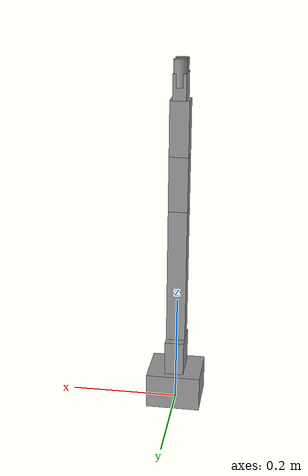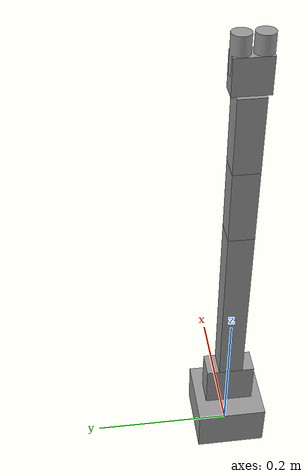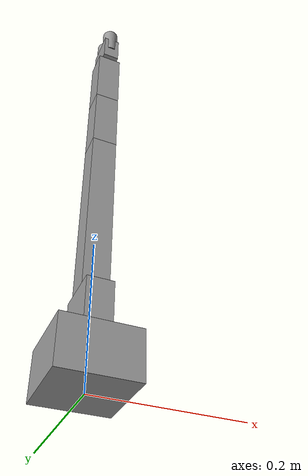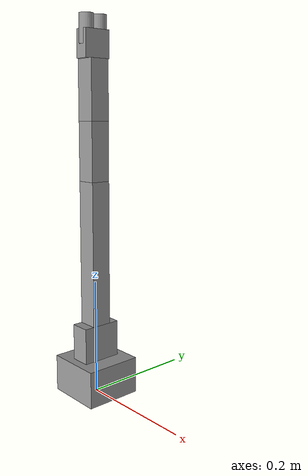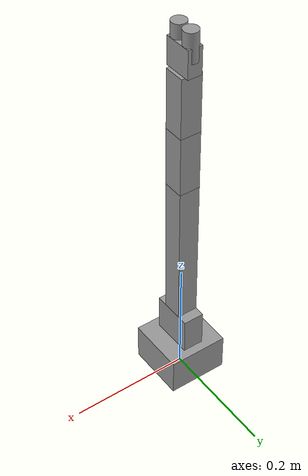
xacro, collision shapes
<?xml version="1.0" ?>
<robot name="dynamixel_arm" xmlns:xacro="http://ros.org/wiki/xacro">

	<!-- constants for robot dimentions -->
	<xacro:property name="pi" value="3.141592"/>

	<!-- inertial for box -->
	<xacro:macro
		name="default_box_inertial"
		params="mass depth width height x_offset y_offset z_offset">
		<inertial>
			<origin xyz="${x_offset} ${y_offset} ${z_offset}" rpy="0 0 0"/>
			<mass value="${mass}"/>
			<inertia
				ixx="1.0" ixy="0.0" ixz="0.0"
				iyy="1.0" iyz="0.0"
				izz="1.0"/>
		</inertial>
	</xacro:macro>

	<!-- inertial for cylinder -->
	<xacro:macro
		name="default_cylinder_inertial"
		params="mass length radius x_offset y_offset z_offset">
		<inertial>
			<origin xyz="${x_offset} ${y_offset} ${z_offset}" rpy="0 0 0"/>
			<mass value="${mass}"/>
			<inertia
				ixx="1.0" ixy="0.0" ixz="0.0"
				iyy="1.0" iyz="0.0"
				izz="1.0"/>
		</inertial>
	</xacro:macro>

	<!-- import Rviz color -->
	<xacro:include filename="$(find infant_description)/materials/materials.xacro"/>
	<!-- import Gazebo -->
	<xacro:include filename="$(find infant_description)/urdf/dynamixel_arm2.gazebo.xacro"/>
	<link name="world"/>

	<joint name="fixed" type="fixed">
		<parent link="world"/>
		<child link="arm_base_link"/>
	</joint>

	<!-- Dynamixel Arm -->

	<link name="arm_base_link">
		<visual>
			<geometry>
				<mesh filename="package://infant_description/meshes/ARM_BODY.dae" />
			</geometry>
			<origin xyz="0 0 0" rpy="0 0 0"/>
			<material name="gray"/>
		</visual>
		<collision>
			<geometry>
				<box size="0.100 0.100 0.064"/>
			</geometry>
			<origin xyz="0 0 ${0.064/2}" rpy="0 0 0"/>
		</collision>
		<inertial>
			<origin xyz="0.0075 0.0000 0.0327" rpy="0 0 0"/>
			<mass value="0.346"/>
			<inertia
				ixx="0.000324" ixy="0.0" ixz="0.0"
				iyy="0.000383" iyz="0.0"
				izz="0.000381"/>
		</inertial>
	</link>

	<joint name="joint1" type="revolute">
		<parent link="arm_base_link"/>
		<child link="link1"/>
		<origin xyz="0 0 ${0.064}" rpy="0 0 0"/>
		<axis xyz="0 0 1"/>
		<limit effort="6.0" lower="-${175/180*pi}" upper="${175/180*pi}" velocity="${11/6*pi}"/>
	</joint>

	<link name="link1">
		<visual>
			<geometry>
				<mesh filename="package://infant_description/meshes/ARM_JOINT1.dae"/>
			</geometry>
			<origin xyz="0 0 0" rpy="${pi/2} 0 0"/>
			<material name="gray"/>
		</visual>
		<collision>
			<geometry>
				<box size="0.035 0.070 0.063"/>
			</geometry>
			<origin xyz="0 0 ${0.063/2}" rpy="0 0 0"/>
		</collision>
		<inertial>
			<origin xyz="0.0002 0.0367 0.0000" rpy="${pi/2} 0 0"/>
			<mass value="0.506"/>
			<inertia
				ixx="0.000733" ixy="0.0" ixz="0.0"
				iyy="0.000495" iyz="0.0"
				izz="0.000424"/>
		</inertial>
	</link>

	<joint name="joint2" type="revolute">
		<parent link="link1"/>
		<child link="link2"/>
		<origin xyz="0 0 ${0.063}" rpy="0 0 0"/>
		<axis xyz="0 -1 0"/>
		<limit effort="${2*6.0}" lower="-${95/180*pi}" upper="${95/180*pi}" velocity="${11/6*pi}"/>
	</joint>

	<link name="link2">
		<visual>
			<geometry>
				<mesh filename="package://infant_description/meshes/ARM_JOINT2.dae"/>
			</geometry>
			<origin xyz="0 0 0" rpy="0 0 0"/>
			<material name="gray"/>
		</visual>
		<collision>
			<geometry>
				<box size="0.035 0.035 0.250"/>
			</geometry>
			<origin xyz="0 0 ${0.250/2}" rpy="0 0 0"/>
		</collision>
		<inertial>
			<origin xyz="-0.0083 0.0001 0.1509" rpy="0 0 0"/>
			<mass value="0.452"/>
			<inertia
				ixx="0.003839" ixy="0.0" ixz="0.000159"
				iyy="0.000378" iyz="0.0"
				izz="0.000282"/>
		</inertial>
	</link>

	<joint name="joint3" type="revolute">
		<parent link="link2"/>
		<child link="link3"/>
		<origin xyz="0 0 0.250" rpy="0 0 0"/>
		<axis xyz="0 -1 0"/>
		<limit effort="6.0" lower="-${150/180*pi}" upper="${10/180*pi}" velocity="${11/6*pi}"/>
	</joint>

	<link name="link3">
		<visual>
			<geometry>
				<mesh filename="package://infant_description/meshes/ARM_JOINT3.dae"/>
			</geometry>
			<origin xyz="0 0 0" rpy="0 0 0"/>
			<material name="gray"/>
		</visual>
		<collision>
			<geometry>
				<box size="0.035 0.035 0.100"/>
			</geometry>
			<origin xyz="0 0 ${0.100/2}" rpy="0 0 0"/>
		</collision>
		<inertial>
			<origin xyz="-0.0193 0.0003 0.0574" rpy="0 0 0"/>
			<mass value="0.232"/>
			<inertia
				ixx="0.000230" ixy="0.0" ixz="-0.000164"
				iyy="0.000231" iyz="0.0"
				izz="0.000120"/>
		</inertial>
	</link>

	<joint name="joint4" type="revolute">
		<parent link="link3"/>
		<child link="link4"/>
		<origin xyz="0 0 0.100" rpy="0 0 0"/>
		<axis xyz="0 0 1"/>
		<limit effort="6.0" lower="-${175/180*pi}" upper="${175/180*pi}" velocity="${11/6*pi}"/>
	</joint>

	<link name="link4">
		<visual>
			<geometry>
				<mesh filename="package://infant_description/meshes/ARM_JOINT4.dae"/>
			</geometry>
			<origin xyz="0 0 0" rpy="${pi/2} 0 0"/>
			<material name="gray"/>
		</visual>
		<collision>
			<geometry>
				<box size="0.035 0.035 0.100"/>
			</geometry>
			<origin xyz="0 0 ${0.100/2}" rpy="0 0 0"/>
		</collision>
		<inertial>
			<origin xyz="0.0000 0.0589 0.0000" rpy="${pi/2} 0 0"/>
			<mass value="0.211"/>
			<inertia
				ixx="0.000307" ixy="0.0" ixz="-0.000164"
				iyy="0.000061" iyz="0.0"
				izz="0.000299"/>
		</inertial>
	</link>

	<joint name="joint5" type="revolute">
		<parent link="link4"/>
		<child link="link5"/>
		<origin xyz="0 0 0.100" rpy="0 0 0"/>
		<axis xyz="0 -1 0"/>
		<limit effort="6.0" lower="-${95/180*pi}" upper="${95/180*pi}" velocity="${11/6*pi}"/>
	</joint>

	<link name="link5">
		<visual>
			<origin xyz="0 0 0" rpy="0 0 0" />
			<geometry>
				<mesh filename="package://infant_description/meshes/ARM_JOINT5.dae"/>
			</geometry>
			<material name="gray"/>
		</visual>
		<collision>
			<origin xyz="0 0 ${0.046/2}" rpy="0 0 0" />
			<geometry>
				<box size="0.024 0.0475 0.046" />
			</geometry>
		</collision>
		<inertial>
			<origin xyz="-0.0013 -0.0012 0.0372" rpy="0 0 0"/>
			<mass value="0.118"/>
			<inertia
				ixx="0.000063" ixy="0.0" ixz="0.0"
				iyy="0.000050" iyz="0.0"
				izz="0.000045"/>
		</inertial>
	</link>

	<joint name="joint6" type="revolute">
		<parent link="link5"/>
		<child link="link6"/>
		<origin xyz="0 -0.0133 0.046" rpy="0 0 0"/>
		<axis xyz="-1 0 0"/>
		<limit effort="6.0" lower="-${40/180*pi}" upper="${20/180*pi}" velocity="${11/6*pi}"/>
	</joint>

	<link name="link6">
		<visual>
			<origin xyz="0 0 0" rpy="0 0 -${pi/2}" />
			<geometry>
				<mesh filename="package://infant_description/meshes/ARM_HAND_A.dae"/>
			</geometry>
			<material name="gray"/>
		</visual>
		<collision>
			<origin xyz="0 0 0" rpy="0 0 ${pi/2}" />
			<geometry>
				<cylinder radius="0.012" length="0.0475" />
			</geometry>
		</collision>
		<inertial>
			<origin xyz="0.0106 -0.0020 0.0249" rpy="0 0 0"/>
			<mass value="0.031"/>
			<inertia
				ixx="0.000033" ixy="0.0" ixz="0.0"
				iyy="0.000027" iyz="0.0"
				izz="0.000012"/>
		</inertial>
	</link>

	<joint name="joint7" type="revolute">
		<parent link="link5"/>
		<child link="link7"/>
		<origin xyz="0 0.0133 0.046" rpy="0 0 0"/>
		<axis xyz="-1 0 0"/>
		<limit effort="6.0" lower="-${40/180*pi}" upper="${20/180*pi}" velocity="${11/6*pi}"/>
	</joint>

	<link name="link7">
		<visual>
			<origin xyz="0 0 0" rpy="0 0 -${pi/2}" />
			<geometry>
				<mesh filename="package://infant_description/meshes/ARM_HAND_B.dae"/>
			</geometry>
			<material name="gray"/>
		</visual>
		<collision>
			<origin xyz="0 0 0" rpy="0 0 -${pi/2}" />
			<geometry>
				<cylinder radius="0.012" length="0.0475" />
			</geometry>
		</collision>
		<inertial>
			<origin xyz="-0.0119 -0.0036 0.0283" rpy="0 0 0"/>
			<mass value="0.027"/>
			<inertia
				ixx="0.000029" ixy="0.0" ixz="0.0"
				iyy="0.000024" iyz="0.0"
				izz="0.000010"/>
		</inertial>
	</link>

	<!-- transmission for Dynamixel Arm-->
	<transmission name="tran1">
		<type>transmission_interface/SimpleTransmission</type>
		<joint name="joint1">
			<hardwareInterface>PositionJointInterface</hardwareInterface>
		</joint>
		<actuator name="motor1">
			<hardwareInterface>PositionJointInterface</hardwareInterface>
			<mechanicalReduction>1</mechanicalReduction>
		</actuator>
	</transmission>

	<transmission name="tran2">
		<type>transmission_interface/SimpleTransmission</type>
		<joint name="joint2">
			<hardwareInterface>PositionJointInterface</hardwareInterface>
		</joint>
		<actuator name="motor2">
			<hardwareInterface>PositionJointInterface</hardwareInterface>
			<mechanicalReduction>1</mechanicalReduction>
		</actuator>
	</transmission>

	<transmission name="tran3">
		<type>transmission_interface/SimpleTransmission</type>
		<joint name="joint3">
			<hardwareInterface>PositionJointInterface</hardwareInterface>
		</joint>
		<actuator name="motor3">
			<hardwareInterface>PositionJointInterface</hardwareInterface>
			<mechanicalReduction>1</mechanicalReduction>
		</actuator>
	</transmission>

	<transmission name="tran4">
		<type>transmission_interface/SimpleTransmission</type>
		<joint name="joint4">
			<hardwareInterface>PositionJointInterface</hardwareInterface>
		</joint>
		<actuator name="motor4">
			<hardwareInterface>PositionJointInterface</hardwareInterface>
			<mechanicalReduction>1</mechanicalReduction>
		</actuator>
	</transmission>

	<transmission name="tran5">
		<type>transmission_interface/SimpleTransmission</type>
		<joint name="joint5">
			<hardwareInterface>PositionJointInterface</hardwareInterface>
		</joint>
		<actuator name="motor5">
			<hardwareInterface>PositionJointInterface</hardwareInterface>
			<mechanicalReduction>1</mechanicalReduction>
		</actuator>
	</transmission>

	<transmission name="tran6">
		<type>transmission_interface/SimpleTransmission</type>
		<joint name="joint6">
			<hardwareInterface>PositionJointInterface</hardwareInterface>
		</joint>
		<actuator name="motor6">
			<hardwareInterface>PositionJointInterface</hardwareInterface>
			<mechanicalReduction>1</mechanicalReduction>
		</actuator>
	</transmission>

	<transmission name="tran7">
		<type>transmission_interface/SimpleTransmission</type>
		<joint name="joint7">
			<hardwareInterface>PositionJointInterface</hardwareInterface>
		</joint>
		<actuator name="motor7">
			<hardwareInterface>PositionJointInterface</hardwareInterface>
			<mechanicalReduction>1</mechanicalReduction>
		</actuator>
	</transmission>

</robot>
